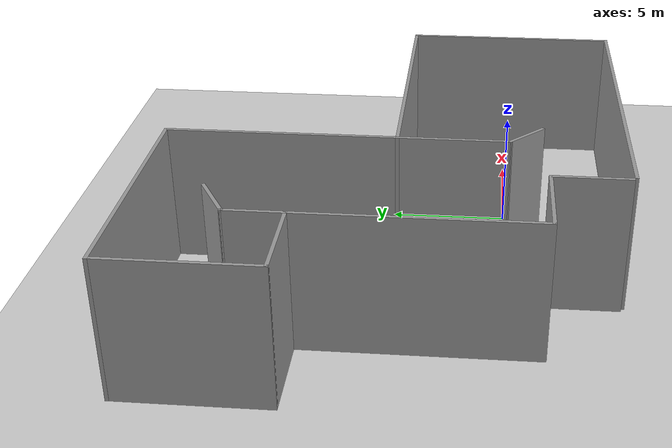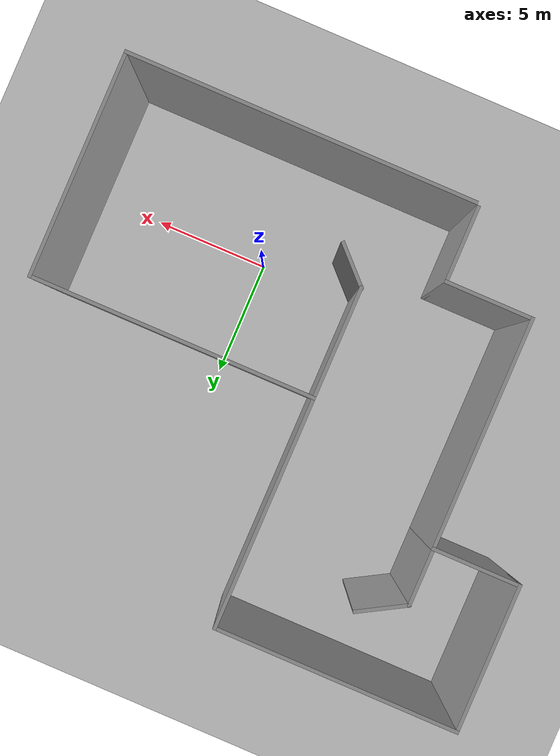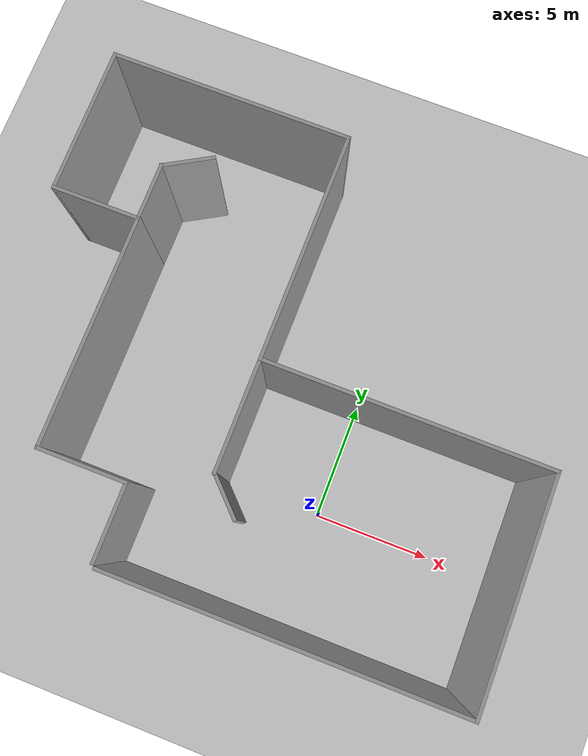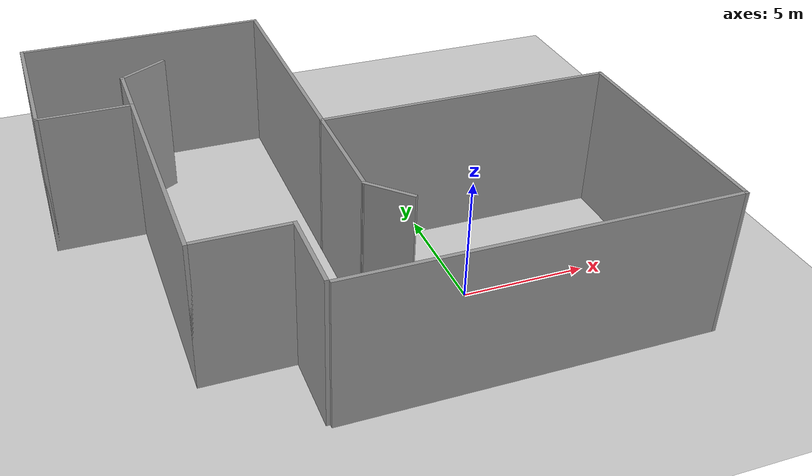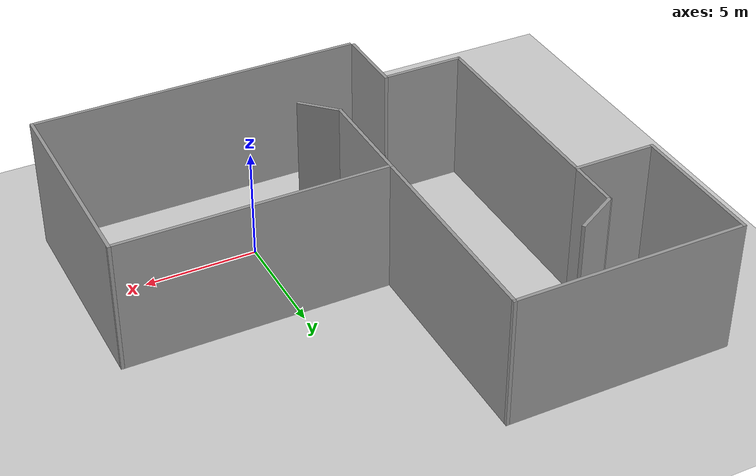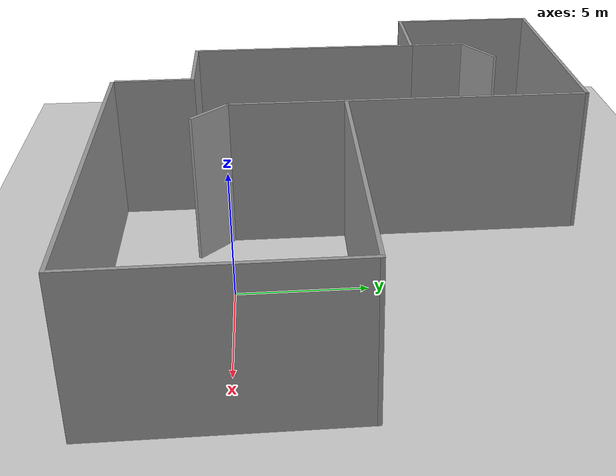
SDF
<sdf version="1.6">
 <world name="default">
  <physics type="ode">
   <ode>
    <solver><type>quick</type><iters>100</iters><sor>1.0</sor></solver>
    <constraints>
     <cfm>0.0</cfm>
     <erp>0.9</erp>
     <contact_max_correcting_vel>0.1</contact_max_correcting_vel>
     <contact_surface_layer>0.0</contact_surface_layer>
    </constraints>
   </ode>
   <real_time_update_rate>0</real_time_update_rate>
   <max_step_size>0.0025</max_step_size>
  </physics>
  <include><uri>model://sun</uri></include>
  <model name="ground_plane">
   <static>true</static>
   <link name="link">
    <collision name="collision">
     <geometry><plane><normal>0 0 1</normal><size>5000 5000</size></plane></geometry>
     <surface><friction><ode><mu>1</mu><mu2>1</mu2></ode></friction></surface>
    </collision>
    <visual name="runway">
     <pose>000 0 0.005 0 0 0.1</pose>
     <cast_shadows>false</cast_shadows>
     <geometry><plane><normal>0 0 1</normal><size>1829 45</size></plane></geometry>
     <material>
      <script><uri>file://media/materials/scripts/gazebo.material</uri><name>Gazebo/Runway</name></script>
     </material>
    </visual>
    <visual name="grass">
     <pose>0 0 -0.1 0 0 0</pose>
     <cast_shadows>false</cast_shadows>
     <geometry><plane><normal>0 0 1</normal><size>5000 5000</size></plane></geometry>
     <material>
      <script><uri>file://media/materials/scripts/gazebo.material</uri><name>Gazebo/Grass</name></script>
     </material>
    </visual>
   </link>
  </model>
  <include><uri>model://drone_arena</uri></include>
 </world>
</sdf>

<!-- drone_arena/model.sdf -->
<sdf version='1.7'>
  <model name='drone_arena'>
    <pose>-3.291 4.661 0 0 -0 0</pose>
    <link name='Wall_13'>
      <collision name='Wall_13_Collision'>
        <geometry>
          <box>
            <size>14.75 0.15 6</size>
          </box>
        </geometry>
        <pose>0 0 3 0 -0 0</pose>
      </collision>
      <visual name='Wall_13_Visual'>
        <pose>0 0 3 0 -0 0</pose>
        <geometry>
          <box>
            <size>14.75 0.15 6</size>
          </box>
        </geometry>
        <material>
          <script>
            <uri>file://media/materials/scripts/gazebo.material</uri>
            <name>Gazebo/Grey</name>
          </script>
          <ambient>1 1 1 1</ambient>
        </material>
        <meta>
          <layer>0</layer>
        </meta>
      </visual>
      <pose>3.675 -9.475 0 0 -0 0</pose>
    </link>
    <link name='Wall_14'>
      <collision name='Wall_14_Collision'>
        <geometry>
          <box>
            <size>9.5 0.15 6</size>
          </box>
        </geometry>
        <pose>0 0 3 0 -0 0</pose>
      </collision>
      <visual name='Wall_14_Visual'>
        <pose>0 0 3 0 -0 0</pose>
        <geometry>
          <box>
            <size>9.5 0.15 6</size>
          </box>
        </geometry>
        <material>
          <script>
            <uri>file://media/materials/scripts/gazebo.material</uri>
            <name>Gazebo/Grey</name>
          </script>
          <ambient>1 1 1 1</ambient>
        </material>
        <meta>
          <layer>0</layer>
        </meta>
      </visual>
      <pose>10.975 -4.8 0 0 -0 1.5708</pose>
    </link>
    <link name='Wall_15'>
      <collision name='Wall_15_Collision'>
        <geometry>
          <box>
            <size>12 0.15 6</size>
          </box>
        </geometry>
        <pose>0 0 3 0 -0 0</pose>
      </collision>
      <visual name='Wall_15_Visual'>
        <pose>0 0 3 0 -0 0</pose>
        <geometry>
          <box>
            <size>12 0.15 6</size>
          </box>
        </geometry>
        <material>
          <script>
            <uri>file://media/materials/scripts/gazebo.material</uri>
            <name>Gazebo/Grey</name>
          </script>
          <ambient>1 1 1 1</ambient>
        </material>
        <meta>
          <layer>0</layer>
        </meta>
      </visual>
      <pose>5.05 -0.125 0 0 -0 3.14159</pose>
    </link>
    <link name='Wall_16'>
      <collision name='Wall_16_Collision'>
        <geometry>
          <box>
            <size>9.75 0.15 6</size>
          </box>
        </geometry>
        <pose>0 0 3 0 -0 0</pose>
      </collision>
      <visual name='Wall_16_Visual'>
        <pose>0 0 3 0 -0 0</pose>
        <geometry>
          <box>
            <size>9.75 0.15 6</size>
          </box>
        </geometry>
        <material>
          <script>
            <uri>file://media/materials/scripts/gazebo.material</uri>
            <name>Gazebo/Grey</name>
          </script>
          <ambient>1 1 1 1</ambient>
        </material>
        <meta>
          <layer>0</layer>
        </meta>
      </visual>
      <pose>-0.875 4.675 0 0 -0 1.5708</pose>
    </link>
    <link name='Wall_17'>
      <collision name='Wall_17_Collision'>
        <geometry>
          <box>
            <size>10.25 0.15 6</size>
          </box>
        </geometry>
        <pose>0 0 3 0 -0 0</pose>
      </collision>
      <visual name='Wall_17_Visual'>
        <pose>0 0 3 0 -0 0</pose>
        <geometry>
          <box>
            <size>10.25 0.15 6</size>
          </box>
        </geometry>
        <material>
          <script>
            <uri>file://media/materials/scripts/gazebo.material</uri>
            <name>Gazebo/Grey</name>
          </script>
          <ambient>1 1 1 1</ambient>
        </material>
        <meta>
          <layer>0</layer>
        </meta>
      </visual>
      <pose>-5.925 9.475 0 0 -0 3.14159</pose>
    </link>
    <link name='Wall_18'>
      <collision name='Wall_18_Collision'>
        <geometry>
          <box>
            <size>6.25 0.15 6</size>
          </box>
        </geometry>
        <pose>0 0 3 0 -0 0</pose>
      </collision>
      <visual name='Wall_18_Visual'>
        <pose>0 0 3 0 -0 0</pose>
        <geometry>
          <box>
            <size>6.25 0.15 6</size>
          </box>
        </geometry>
        <material>
          <script>
            <uri>file://media/materials/scripts/gazebo.material</uri>
            <name>Gazebo/Grey</name>
          </script>
          <ambient>1 1 1 1</ambient>
        </material>
        <meta>
          <layer>0</layer>
        </meta>
      </visual>
      <pose>-10.975 6.425 0 0 -0 -1.5708</pose>
    </link>
    <link name='Wall_19'>
      <collision name='Wall_19_Collision'>
        <geometry>
          <box>
            <size>3.75 0.15 6</size>
          </box>
        </geometry>
        <pose>0 0 3 0 -0 0</pose>
      </collision>
      <visual name='Wall_19_Visual'>
        <pose>0 0 3 0 -0 0</pose>
        <geometry>
          <box>
            <size>3.75 0.15 6</size>
          </box>
        </geometry>
        <material>
          <script>
            <uri>file://media/materials/scripts/gazebo.material</uri>
            <name>Gazebo/Grey</name>
          </script>
          <ambient>1 1 1 1</ambient>
        </material>
        <meta>
          <layer>0</layer>
        </meta>
      </visual>
      <pose>-9.175 3.375 0 0 -0 0</pose>
    </link>
    <link name='Wall_20'>
      <collision name='Wall_20_Collision'>
        <geometry>
          <box>
            <size>9.75 0.15 6</size>
          </box>
        </geometry>
        <pose>0 0 3 0 -0 0</pose>
      </collision>
      <visual name='Wall_20_Visual'>
        <pose>0 0 3 0 -0 0</pose>
        <geometry>
          <box>
            <size>9.75 0.15 6</size>
          </box>
        </geometry>
        <material>
          <script>
            <uri>file://media/materials/scripts/gazebo.material</uri>
            <name>Gazebo/Grey</name>
          </script>
          <ambient>1 1 1 1</ambient>
        </material>
        <meta>
          <layer>0</layer>
        </meta>
      </visual>
      <pose>-7.375 -1.425 0 0 -0 -1.5708</pose>
    </link>
    <link name='Wall_21'>
      <collision name='Wall_21_Collision'>
        <geometry>
          <box>
            <size>3.75 0.15 6</size>
          </box>
        </geometry>
        <pose>0 0 3 0 -0 0</pose>
      </collision>
      <visual name='Wall_21_Visual'>
        <pose>0 0 3 0 -0 0</pose>
        <geometry>
          <box>
            <size>3.75 0.15 6</size>
          </box>
        </geometry>
        <material>
          <script>
            <uri>file://media/materials/scripts/gazebo.material</uri>
            <name>Gazebo/Grey</name>
          </script>
          <ambient>1 1 1 1</ambient>
        </material>
        <meta>
          <layer>0</layer>
        </meta>
      </visual>
      <pose>-5.575 -6.225 0 0 -0 0</pose>
    </link>
    <link name='Wall_22'>
      <collision name='Wall_22_Collision'>
        <geometry>
          <box>
            <size>3.25 0.15 6</size>
          </box>
        </geometry>
        <pose>0 0 3 0 -0 0</pose>
      </collision>
      <visual name='Wall_22_Visual'>
        <pose>0 0 3 0 -0 0</pose>
        <geometry>
          <box>
            <size>3.25 0.15 6</size>
          </box>
        </geometry>
        <material>
          <script>
            <uri>file://media/materials/scripts/gazebo.material</uri>
            <name>Gazebo/Grey</name>
          </script>
          <ambient>1 1 1 1</ambient>
        </material>
        <meta>
          <layer>0</layer>
        </meta>
      </visual>
      <pose>-3.775 -7.775 0 0 -0 -1.5708</pose>
    </link>
    <link name='Wall_54'>
      <collision name='Wall_54_Collision'>
        <geometry>
          <box>
            <size>4.75 0.15 6</size>
          </box>
        </geometry>
        <pose>0 0 3 0 -0 0</pose>
      </collision>
      <visual name='Wall_54_Visual'>
        <pose>0 0 3 0 -0 0</pose>
        <geometry>
          <box>
            <size>4.75 0.15 6</size>
          </box>
        </geometry>
        <material>
          <script>
            <uri>file://media/materials/scripts/gazebo.material</uri>
            <name>Gazebo/Grey</name>
          </script>
          <ambient>1 1 1 1</ambient>
        </material>
        <meta>
          <layer>0</layer>
        </meta>
      </visual>
      <pose>-0.875 -2.425 0 0 -0 -1.5708</pose>
    </link>
    <link name='Wall_55'>
      <collision name='Wall_55_Collision'>
        <geometry>
          <box>
            <size>2 0.15 6</size>
          </box>
        </geometry>
        <pose>0 0 3 0 -0 0</pose>
      </collision>
      <visual name='Wall_55_Visual'>
        <pose>0 0 3 0 -0 0</pose>
        <geometry>
          <box>
            <size>2 0.15 6</size>
          </box>
        </geometry>
        <material>
          <script>
            <uri>file://media/materials/scripts/gazebo.material</uri>
            <name>Gazebo/Grey</name>
          </script>
          <ambient>1 1 1 1</ambient>
        </material>
        <meta>
          <layer>0</layer>
        </meta>
      </visual>
      <pose>-0.221 -5.379 0 0 -0 -0.785398</pose>
    </link>
    <link name='Wall_57'>
      <collision name='Wall_57_Collision'>
        <geometry>
          <box>
            <size>2.5 0.15 6</size>
          </box>
        </geometry>
        <pose>0 0 3 0 -0 0</pose>
      </collision>
      <visual name='Wall_57_Visual'>
        <pose>0 0 3 0 -0 0</pose>
        <geometry>
          <box>
            <size>2.5 0.15 6</size>
          </box>
        </geometry>
        <material>
          <script>
            <uri>file://media/materials/scripts/gazebo.material</uri>
            <name>Gazebo/Grey</name>
          </script>
          <ambient>1 1 1 1</ambient>
        </material>
        <meta>
          <layer>0</layer>
        </meta>
      </visual>
      <pose>-7.375 4.55 0 0 -0 1.5708</pose>
    </link>
    <link name='Wall_58'>
      <collision name='Wall_58_Collision'>
        <geometry>
          <box>
            <size>2.25 0.15 6</size>
          </box>
        </geometry>
        <pose>0 0 3 0 -0 0</pose>
      </collision>
      <visual name='Wall_58_Visual'>
        <pose>0 0 3 0 -0 0</pose>
        <geometry>
          <box>
            <size>2.25 0.15 6</size>
          </box>
        </geometry>
        <material>
          <script>
            <uri>file://media/materials/scripts/gazebo.material</uri>
            <name>Gazebo/Grey</name>
          </script>
          <ambient>1 1 1 1</ambient>
        </material>
        <meta>
          <layer>0</layer>
        </meta>
      </visual>
      <pose>-6.4655 6.25 0 0 -0 0.523516</pose>
    </link>
    <static>1</static>
  </model>
</sdf>
